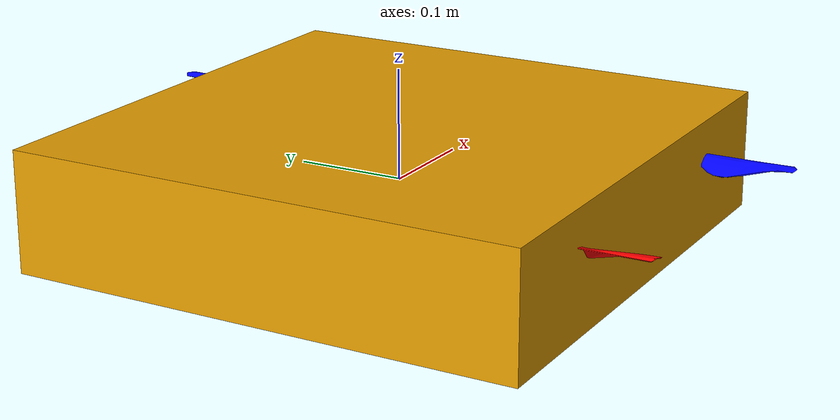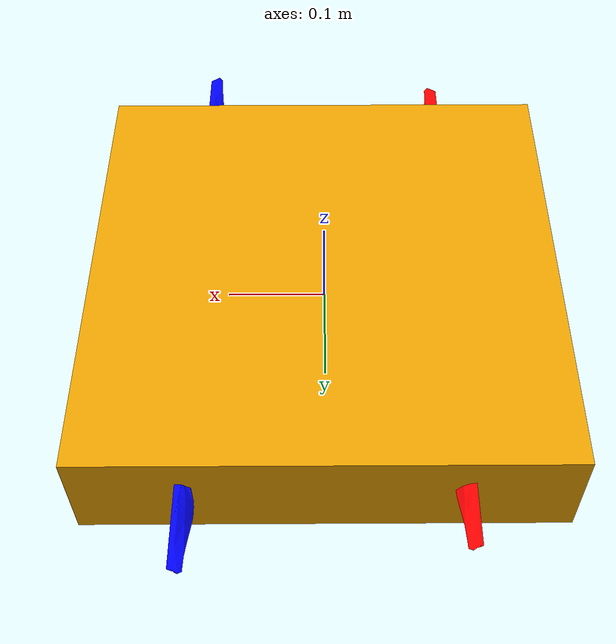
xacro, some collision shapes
<?xml version='1.0' encoding='UTF-8'?>
<robot xmlns:xacro="http://www.ros.org/wiki/xacro" name="quadrotor">

    <xacro:include filename="gazebo_full.xacro" />

    <!-- Base Link -->
    <link name="base_link">
        <inertial>
            <origin xyz="0 0 0" rpy="0 0 0"/>
            <mass value="${mass}"/>
            <inertia ixx="0.0347563" ixy="0" ixz="0" iyy="0.07" iyz="0" izz="0.0977"/>
        </inertial>
        <collision name="base_link_collision">
            <origin xyz="0 0 0" rpy="0 0 0"/>
            <geometry>
                <box size="0.47 0.47 0.11"/>
            </geometry>
        </collision>
        <visual name="base_link_visual">
            <origin xyz="0 0 0" rpy="0 0 0"/>
            <geometry>
                <mesh filename="file://$(find quad_description)/meshes/x3.dae" scale="1 1 1"/>
            </geometry>
        </visual>
    </link>

    <!-- IMU Link -->
    <link name="imu_link">
        <inertial>
            <origin xyz="0 0 0" rpy="0 0 0"/>
            <mass value="0.005"/>
            <inertia ixx="8.33e-06" ixy="0" ixz="0" iyy="8.33e-06" iyz="0" izz="8.33e-06"/>
        </inertial>
    </link>

    <!-- IMU Joint -->
    <joint name="imu_joint" type="fixed">
        <parent link="base_link"/>
        <child link="imu_link"/>
        <origin xyz="0 0 0" rpy="0 0 0"/>
    </joint>

    <!-- Rotor 0 -->
    <link name="rotor_0">
        <inertial>
            <origin xyz="0 0 0" rpy="0 0 0"/>
            <mass value="0.005"/>
            <inertia ixx="9.75e-07" ixy="0" ixz="0" iyy="4.17041e-05" iyz="0" izz="4.26041e-05"/>
        </inertial>
        <collision name="rotor_0_collision">
            <origin xyz="0 0 0" rpy="0 0 0"/>
            <geometry>
                <cylinder length="0.005" radius="0.1"/>
            </geometry>
        </collision>
        <visual name="rotor_0_visual">
            <origin xyz="0 0 0" rpy="0 0 0"/>
            <geometry>
                <mesh filename="file://$(find quad_description)/meshes/ccw.stl" scale="1 1 1"/>
            </geometry>
            <material name="blue">
                <color rgba="0 0 1 1"/>
            </material>
        </visual>
    </link>

    <!-- Rotor 0 joint (front-right) -->
    <joint name="rotor_0_joint" type="continuous">
        <parent link="base_link"/>
        <child link="rotor_0"/>
        <origin xyz="0.13 -0.22 0.023" rpy="0 0 0"/>
        <axis xyz="0 0 1"/>
    </joint>

    <!-- Rotor 1 -->
    <link name="rotor_1">
        <inertial>
            <origin xyz="0 0 0" rpy="0 0 0"/>
            <mass value="0.005"/>
            <inertia ixx="9.75e-07" ixy="0" ixz="0" iyy="4.17041e-05" iyz="0" izz="4.26041e-05"/>
        </inertial>
        <collision name="rotor_1_collision">
            <origin xyz="0 0 0" rpy="0 0 0"/>
            <geometry>
                <cylinder length="0.005" radius="0.1"/>
            </geometry>
        </collision>
        <visual name="rotor_1_visual">
            <origin xyz="0 0 0" rpy="0 0 0"/>
            <geometry>
                <mesh filename="file://$(find quad_description)/meshes/ccw.stl" scale="1 1 1"/>
            </geometry>
            <material name="red">
                <color rgba="1 0 0 1"/>
            </material>
        </visual>
    </link>

    <!-- Rotor 1 joint (rear-left) -->
    <joint name="rotor_1_joint" type="continuous">
        <parent link="base_link"/>
        <child link="rotor_1"/>
        <origin xyz="-0.13 0.2 0.023" rpy="0 0 0"/>
        <axis xyz="0 0 1"/>
    </joint>

    <!-- Rotor 2 -->
    <link name="rotor_2">
        <inertial>
            <origin xyz="0 0 0" rpy="0 0 0"/>
            <mass value="0.005"/>
            <inertia ixx="9.75e-07" ixy="0" ixz="0" iyy="4.17041e-05" iyz="0" izz="4.26041e-05"/>
        </inertial>
        <collision name="rotor_2_collision">
            <origin xyz="0 0 0" rpy="0 0 0"/>
            <geometry>
                <cylinder length="0.005" radius="0.1"/>
            </geometry>
        </collision>
        <visual name="rotor_2_visual">
            <origin xyz="0 0 0" rpy="0 0 0"/>
            <geometry>
                <mesh filename="file://$(find quad_description)/meshes/cw.stl" scale="1 1 1"/>
            </geometry>
            <material name="blue">
                <color rgba="0 0 1 1"/>
            </material>
        </visual>
    </link>

    <!-- Rotor 2 joint (front-left) -->
    <joint name="rotor_2_joint" type="continuous">
        <parent link="base_link"/>
        <child link="rotor_2"/>
        <origin xyz="0.13 0.22 0.023" rpy="0 0 0"/>
        <axis xyz="0 0 1"/>
    </joint>

    <!-- Rotor 3 -->
    <link name="rotor_3">
        <inertial>
            <origin xyz="0 0 0" rpy="0 0 0"/>
            <mass value="0.005"/>
            <inertia ixx="9.75e-07" ixy="0" ixz="0" iyy="4.17041e-05" iyz="0" izz="4.26041e-05"/>
        </inertial>
        <collision name="rotor_3_collision">
            <origin xyz="0 0 0" rpy="0 0 0"/>
            <geometry>
                <cylinder length="0.005" radius="0.1"/>
            </geometry>
        </collision>
        <visual name="rotor_3_visual">
            <origin xyz="0 0 0" rpy="0 0 0"/>
            <geometry>
                <mesh filename="file://$(find quad_description)/meshes/cw.stl" scale="1 1 1"/>
            </geometry>
            <material name="red">
                <color rgba="1 0 0 1"/>
            </material>
        </visual>
    </link>

    <!-- Rotor 3 joint (rear-right) -->
    <joint name="rotor_3_joint" type="continuous">
        <parent link="base_link"/>
        <child link="rotor_3"/>
        <origin xyz="-0.13 -0.2 0.023" rpy="0 0 0"/>
        <axis xyz="0 0 1"/>
    </joint>

</robot>

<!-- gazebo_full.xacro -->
<robot xmlns:xacro="http://www.ros.org/wiki/xacro" name="quadrotor">

  <!-- Include robot parameters -->
  <xacro:include filename="robot_params.xacro" />

  <!-- Joint State Publisher Plugin -->

  <gazebo>
    <plugin filename="libignition-gazebo6-joint-state-publisher-system.so"
            name="ignition::gazebo::systems::JointStatePublisher">
      <topic>joint_states</topic>
    </plugin>
  </gazebo>

  <!-- Odometry Publisher Plugin (Ground Truth in Simulation) -->

  <gazebo>
    <plugin filename="libignition-gazebo6-odometry-publisher-system.so"
            name="ignition::gazebo::systems::OdometryPublisher">
      <odom_topic>odom</odom_topic>
      <odom_frame>odom</odom_frame>
      <robot_base_frame>base_link</robot_base_frame>
      <dimensions>3</dimensions>
      <odom_publish_frequency>100</odom_publish_frequency>
      <tf_topic>tf</tf_topic>
    </plugin>
  </gazebo>

  <!-- IMU Sensor Plugin -->

  <gazebo reference="imu_link">
    <sensor name="imu_sensor" type="imu">
      <always_on>true</always_on>
      <update_rate>100.0</update_rate>
      <visualize>true</visualize>
      <topic>imu</topic>
      <plugin filename="libignition-gazebo6-imu-system.so" name="ignition::gazebo::systems::Imu"/>
      <pose>0 0 0 0 0 0</pose>
      <imu>
        <noise>
          <type>gaussian</type>
          <rate>
            <mean> 0.001 </mean>
            <stddev> 0.005 </stddev>
          </rate>
          <accel>
            <mean> 0.005 </mean>
            <stddev> 0.05 </stddev>
          </accel>
        </noise>
      </imu>
    </sensor>
  </gazebo>

  <!-- Rotor 0 Motor Model -->

  <gazebo>
    <plugin filename="libignition-gazebo6-multicopter-motor-model-system.so"
            name="ignition::gazebo::systems::MulticopterMotorModel">
      <robotNamespace>quadrotor</robotNamespace>
      <jointName>rotor_0_joint</jointName>
      <linkName>rotor_0</linkName>
      <turningDirection>ccw</turningDirection>
      <timeConstantUp>${time_constant_up}</timeConstantUp>
      <timeConstantDown>${time_constant_down}</timeConstantDown>
      <maxRotVelocity>${omega_max}</maxRotVelocity>
      <motorConstant>${k_F}</motorConstant>
      <momentConstant>${k_M}</momentConstant>
      <commandSubTopic>command/motor_speed</commandSubTopic>
      <motorNumber>0</motorNumber>
      <rotorDragCoefficient>${rotorDragCoefficient}</rotorDragCoefficient>
      <rollingMomentCoefficient>${rollingMomentCoefficient}</rollingMomentCoefficient>
      <motorSpeedPubTopic>motor_speed/0</motorSpeedPubTopic>
      <rotorVelocitySlowdownSim>${rotorVelocitySlowdownSim}</rotorVelocitySlowdownSim>
      <motorType>velocity</motorType>
    </plugin>
  </gazebo>

  <!-- Rotor 1 Motor Model -->
  <gazebo>
    <plugin filename="libignition-gazebo6-multicopter-motor-model-system.so"
            name="ignition::gazebo::systems::MulticopterMotorModel">
      <robotNamespace>quadrotor</robotNamespace>
      <jointName>rotor_1_joint</jointName>
      <linkName>rotor_1</linkName>
      <turningDirection>ccw</turningDirection>
      <timeConstantUp>${time_constant_up}</timeConstantUp>
      <timeConstantDown>${time_constant_down}</timeConstantDown>
      <maxRotVelocity>${omega_max}</maxRotVelocity>
      <motorConstant>${k_F}</motorConstant>
      <momentConstant>${k_M}</momentConstant>
      <commandSubTopic>command/motor_speed</commandSubTopic>
      <motorNumber>1</motorNumber>
      <rotorDragCoefficient>${rotorDragCoefficient}</rotorDragCoefficient>
      <rollingMomentCoefficient>${rollingMomentCoefficient}</rollingMomentCoefficient>
      <motorSpeedPubTopic>motor_speed/1</motorSpeedPubTopic>
      <rotorVelocitySlowdownSim>${rotorVelocitySlowdownSim}</rotorVelocitySlowdownSim>
      <motorType>velocity</motorType>
    </plugin>
  </gazebo>

  <!-- Rotor 2 Motor Model -->
  <gazebo>
    <plugin filename="libignition-gazebo6-multicopter-motor-model-system.so"
            name="ignition::gazebo::systems::MulticopterMotorModel">
      <robotNamespace>quadrotor</robotNamespace>
      <jointName>rotor_2_joint</jointName>
      <linkName>rotor_2</linkName>
      <turningDirection>cw</turningDirection>
      <timeConstantUp>${time_constant_up}</timeConstantUp>
      <timeConstantDown>${time_constant_down}</timeConstantDown>
      <maxRotVelocity>${omega_max}</maxRotVelocity>
      <motorConstant>${k_F}</motorConstant>
      <momentConstant>${k_M}</momentConstant>
      <commandSubTopic>command/motor_speed</commandSubTopic>
      <motorNumber>2</motorNumber>
      <rotorDragCoefficient>${rotorDragCoefficient}</rotorDragCoefficient>
      <rollingMomentCoefficient>${rollingMomentCoefficient}</rollingMomentCoefficient>
      <motorSpeedPubTopic>motor_speed/2</motorSpeedPubTopic>
      <rotorVelocitySlowdownSim>${rotorVelocitySlowdownSim}</rotorVelocitySlowdownSim>
      <motorType>velocity</motorType>
    </plugin>
  </gazebo>

  <!-- Rotor 3 Motor Model -->
  <gazebo>
    <plugin filename="libignition-gazebo6-multicopter-motor-model-system.so"
            name="ignition::gazebo::systems::MulticopterMotorModel">
      <robotNamespace>quadrotor</robotNamespace>
      <jointName>rotor_3_joint</jointName>
      <linkName>rotor_3</linkName>
      <turningDirection>cw</turningDirection>
      <timeConstantUp>${time_constant_up}</timeConstantUp>
      <timeConstantDown>${time_constant_down}</timeConstantDown>
      <maxRotVelocity>${omega_max}</maxRotVelocity>
      <motorConstant>${k_F}</motorConstant>
      <momentConstant>${k_M}</momentConstant>
      <commandSubTopic>command/motor_speed</commandSubTopic>
      <motorNumber>3</motorNumber>
      <rotorDragCoefficient>${rotorDragCoefficient}</rotorDragCoefficient>
      <rollingMomentCoefficient>${rollingMomentCoefficient}</rollingMomentCoefficient>
      <motorSpeedPubTopic>motor_speed/3</motorSpeedPubTopic>
      <rotorVelocitySlowdownSim>${rotorVelocitySlowdownSim}</rotorVelocitySlowdownSim>
      <motorType>velocity</motorType>
    </plugin>
  </gazebo>

</robot>

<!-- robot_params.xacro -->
<robot xmlns:xacro="http://www.ros.org/wiki/xacro">

  <xacro:property name="mass" value="1.5"/>
  <xacro:property name="gravity" value="9.81"/>
  <xacro:property name="k_F" value="8.54858e-06"/>
  <xacro:property name="k_M" value="0.06"/>
  <xacro:property name="time_constant_up" value="0.0125"/>
  <xacro:property name="time_constant_down" value="0.025"/>
  <xacro:property name="rotorDragCoefficient" value="8.06428e-05"/>
  <xacro:property name="rollingMomentCoefficient" value="8.06428e-05"/>
  <xacro:property name="rotorVelocitySlowdownSim" value="20"/>
  <xacro:property name="omega_max" value="1500"/>

</robot>
